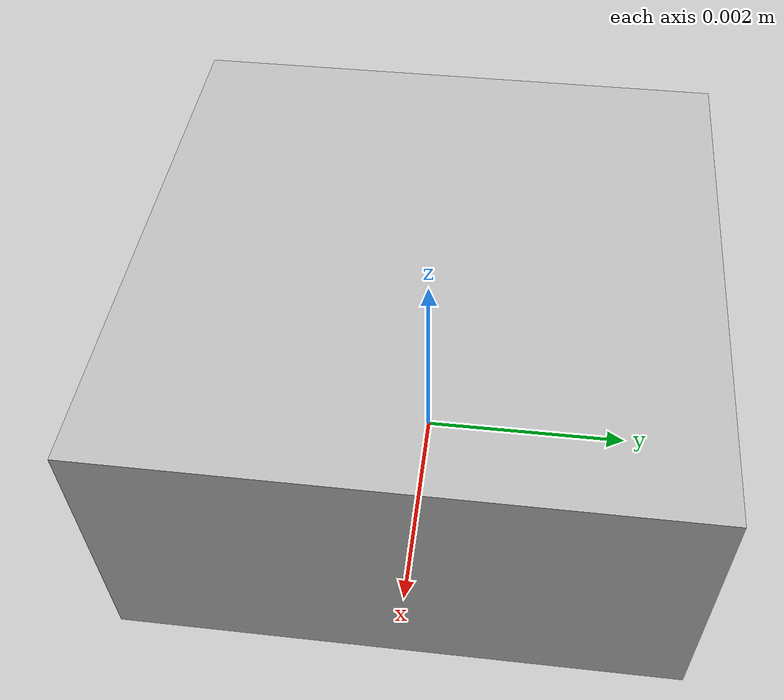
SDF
<?xml version="1.0"?>
<sdf version="1.8">
  <model name="magnetometer">
    <link name="magnetometer_link">
      <pose relative_to='__model__'>0 0 0.00125 0 0 0</pose>
      <inertial>
        <mass>0.001</mass>
        <inertia>
          <ixx>0.0000166667</ixx>
          <iyy>0.0000166667</iyy>
          <izz>0.0000166667</izz>
        </inertia>
      </inertial>
      <collision name="collision">
        <geometry>
          <box>
            <size>0.005 0.005 0.0025</size>
          </box>
        </geometry>
      </collision>
      <visual name="visual">
        <geometry>
          <box>
            <size>0.005 0.005 0.0025</size>
          </box>
        </geometry>
      </visual>
      <sensor name="magnetometer" type="magnetometer">
        <always_on>1</always_on>
        <update_rate>100</update_rate>
        <visualize>true</visualize>
        <topic>/magnetometer</topic>
        <enable_metrics>true</enable_metrics>
        <magnetometer>
          <x>
            <noise type="gaussian">
              <mean>0.0</mean>
              <stddev>0.1</stddev>
            </noise>
          </x>
          <y>
            <noise type="gaussian">
              <mean>0.0</mean>
              <stddev>0.1</stddev>
            </noise>
          </y>
          <z>
            <noise type="gaussian">
              <mean>0.0</mean>
              <stddev>0.1</stddev>
            </noise>
          </z>
        </magnetometer>
      </sensor>
    </link>
  </model>
</sdf>
